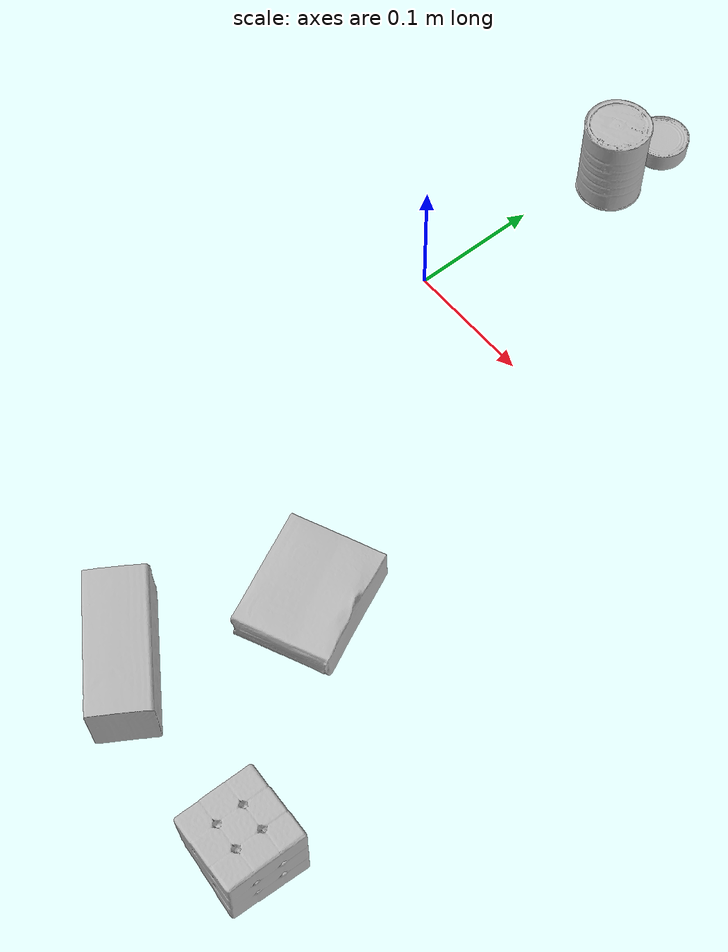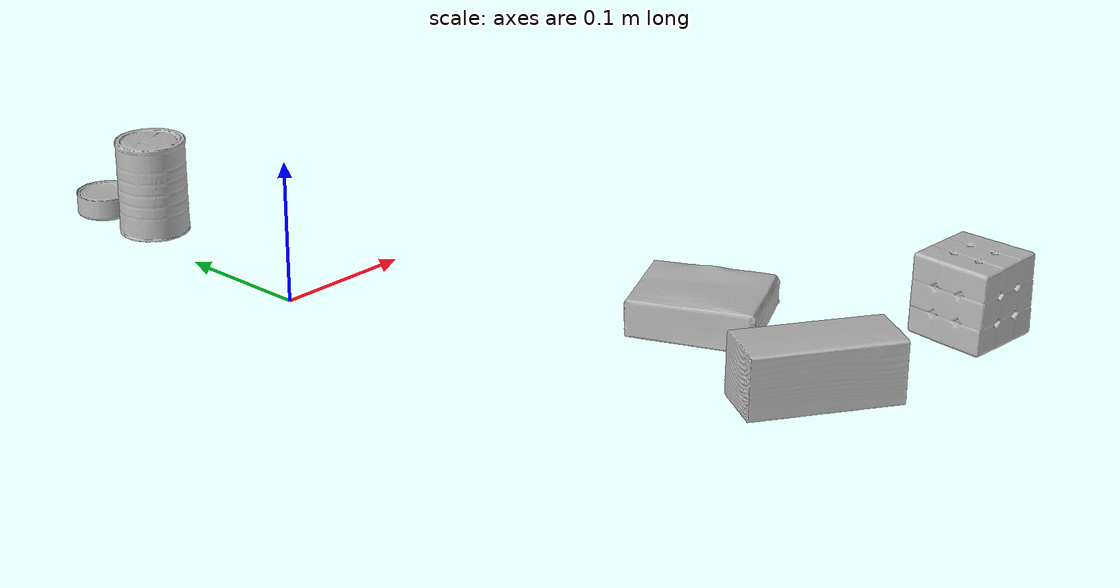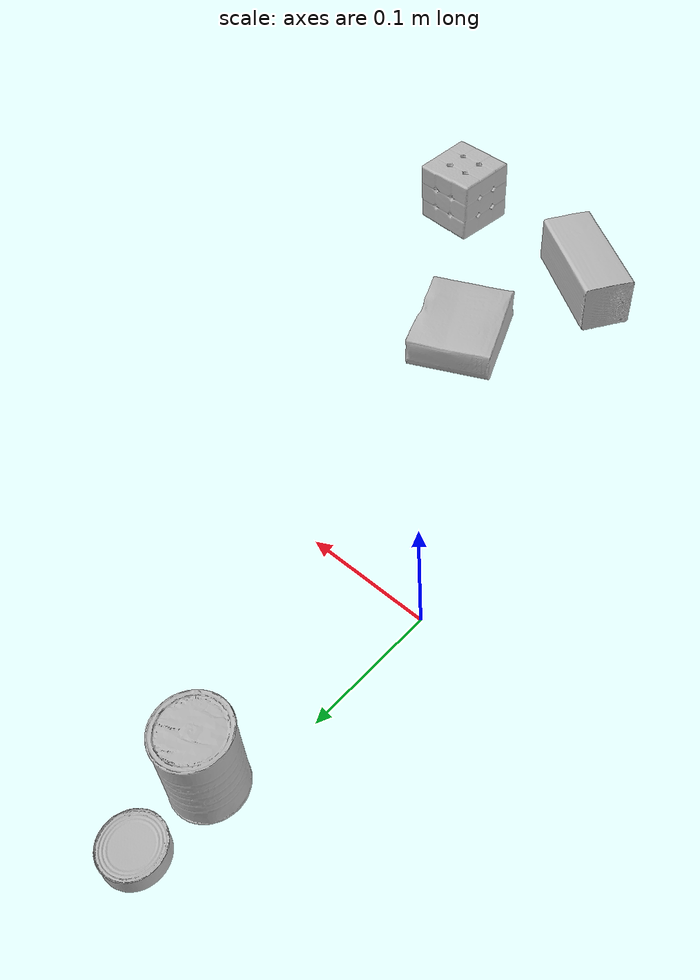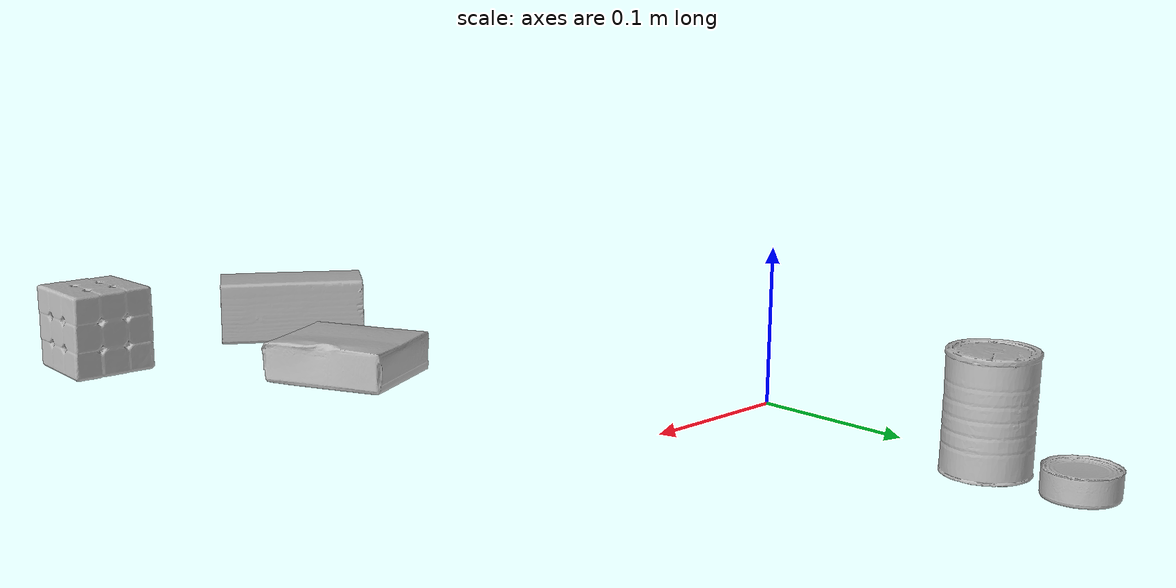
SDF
<sdf version="1.4">
  <world name="default">
    <light name="light1" type="point">
      <pose>0 0 1 0 0 0</pose>
      <diffuse>3 3 3 1</diffuse>
      <specular>3 3 3 1</specular>
    </light>
    <light name="light2" type="point">
      <pose>0 0.5 2 0 0 0</pose>
      <diffuse>1 1 1 1</diffuse>
      <specular>1 1 1 1</specular>
    </light>
    <light name="light3" type="point">
      <pose>0 0.5 2 0 0 0</pose>
      <diffuse>3 3 3 1</diffuse>
      <specular>3 3 3 1</specular>
    </light>
    <scene>
      <ambient>0.7 0.7 0.7</ambient>
    </scene>
    <model name="box1">
      <link name="link_box1">
        <collision name="default">
          <geometry>
            <mesh>
              <uri>model://rubiks_cube/collision_meshes/collision.obj</uri>
              <scale>1.0 1.0 1.0</scale>
            </mesh>
          </geometry>
          <surface>
            <friction>
              <ode>
                <mu>0.5</mu>
                <mu2>0.5</mu2>
              </ode>
            </friction>
          <contact>
        <ode>
            <max_vel>0</max_vel>
            <min_depth>0.0001</min_depth>
            <kp>1e8</kp>
        </ode>
    </contact></surface>
        </collision>
        <visual name="default">
          <geometry>
            <mesh>
              <uri>model://rubiks_cube/visual_meshes/visual.dae</uri>
              <scale>1.0 1.0 1.0</scale>
            </mesh>
          </geometry>
        </visual>
        <inertial>
          <mass>0.1675702929496765</mass>
          <pose>2.6721041649580002e-05 5.2569666877388954e-05 -7.264316082000732e-06 -0.054672410780645164 -0.09813946178663992 -0.034457105846518836</pose>
          <inertia>
            <ixx>9.259384e-05</ixx>
            <iyy>9.2162045e-05</iyy>
            <izz>9.336113e-05</izz>
            <ixy>0</ixy>
            <ixz>0</ixz>
            <iyz>0</iyz>
          </inertia>
        </inertial>
      </link>
      <pose>0.2680342197418213 -0.3672467768192291 0.028678959235548973 -4.20526200604251e-06 -1.765628299014674e-06 -0.03792312506970046</pose>
    </model>
    <model name="box2">
      <link name="link_box2">
        <collision name="default">
          <geometry>
            <mesh>
              <uri>model://wood_block/collision_meshes/collision.obj</uri>
              <scale>0.5 0.5 0.5</scale>
            </mesh>
          </geometry>
          <surface>
            <friction>
              <ode>
                <mu>0.5</mu>
                <mu2>0.5</mu2>
              </ode>
            </friction>
          <contact>
        <ode>
            <max_vel>0</max_vel>
            <min_depth>0.0001</min_depth>
            <kp>1e8</kp>
        </ode>
    </contact></surface>
        </collision>
        <visual name="default">
          <geometry>
            <mesh>
              <uri>model://wood_block/visual_meshes/visual.dae</uri>
              <scale>0.5 0.5 0.5</scale>
            </mesh>
          </geometry>
        </visual>
        <inertial>
          <mass>0.20594346523284912</mass>
          <pose>-2.9066577553749084e-06 -0.000285404734313488 0.00013204291462898254 -0.05220975528833662 -0.005192695571830849 -0.0068613788586691015</pose>
          <inertia>
            <ixx>6.8895875e-05</ixx>
            <iyy>0.0002176421</iyy>
            <izz>0.00021682802</izz>
            <ixy>0</ixy>
            <ixz>0</ixz>
            <iyz>0</iyz>
          </inertia>
        </inertial>
      </link>
      <pose>0.11667963117361069 -0.3526553809642792 0.022629275918006897 -0.005208358394317501 0.005718754187382959 2.56666381498562</pose>
    </model>
    <model name="box3">
      <link name="link_box3">
        <collision name="default">
          <geometry>
            <mesh>
              <uri>model://gelatin_box/collision_meshes/collision.obj</uri>
              <scale>1.0 1.0 1.0</scale>
            </mesh>
          </geometry>
          <surface>
            <friction>
              <ode>
                <mu>0.5</mu>
                <mu2>0.5</mu2>
              </ode>
            </friction>
          <contact>
        <ode>
            <max_vel>0</max_vel>
            <min_depth>0.0001</min_depth>
            <kp>1e8</kp>
        </ode>
    </contact></surface>
        </collision>
        <visual name="default">
          <geometry>
            <mesh>
              <uri>model://gelatin_box/visual_meshes/visual.dae</uri>
              <scale>1.0 1.0 1.0</scale>
            </mesh>
          </geometry>
        </visual>
        <inertial>
          <mass>0.27371785044670105</mass>
          <pose>0.0004319618456065655 0.00011156871914863586 -0.0003640321083366871 -0.0010503717367230932 -0.004755817294347581 0.01644056133308036</pose>
          <inertia>
            <ixx>0.00019322247</ixx>
            <iyy>0.00013801781</iyy>
            <izz>0.00029412765</izz>
            <ixy>0</ixy>
            <ixz>0</ixz>
            <iyz>0</iyz>
          </inertia>
        </inertial>
      </link>
      <pose>0.15752016007900238 -0.2312728464603424 0.015168316662311554 0.00559667472297876 -0.007303808804720369 0.42110360018142845</pose>
    </model>
    <model name="can1">
      <link name="link_can1">
        <collision name="default">
          <geometry>
            <mesh>
              <uri>model://master_chef_can/collision_meshes/collision.obj</uri>
              <scale>0.5 0.5 0.5</scale>
            </mesh>
          </geometry>
          <surface>
            <friction>
              <ode>
                <mu>0.5</mu>
                <mu2>0.5</mu2>
              </ode>
            </friction>
          <contact>
        <ode>
            <max_vel>0</max_vel>
            <min_depth>0.0001</min_depth>
            <kp>1e8</kp>
        </ode>
    </contact></surface>
        </collision>
        <visual name="default">
          <geometry>
            <mesh>
              <uri>model://master_chef_can/visual_meshes/visual.dae</uri>
              <scale>0.5 0.5 0.5</scale>
            </mesh>
          </geometry>
        </visual>
        <inertial>
          <mass>0.18439537286758423</mass>
          <pose>-4.6619643399026245e-05 1.3926847941547749e-07 -5.080040136817843e-05 -0.0017995053130472594 0.0006479450382529565 -0.6102509153361354</pose>
          <inertia>
            <ixx>0.00010822757</ixx>
            <iyy>0.00010743104</iyy>
            <izz>5.9804017e-05</izz>
            <ixy>0</ixy>
            <ixz>0</ixz>
            <iyz>0</iyz>
          </inertia>
        </inertial>
      </link>
      <pose>0.02054324373602867 0.16965678334236145 0.03530200570821762 -1.4036753520231076e-06 -1.017697773661591e-06 0.9588093112531797</pose>
    </model>
    <model name="can2">
      <link name="link_can2">
        <collision name="default">
          <geometry>
            <mesh>
              <uri>model://tuna_fish_can/collision_meshes/collision.obj</uri>
              <scale>0.5 0.5 0.5</scale>
            </mesh>
          </geometry>
          <surface>
            <friction>
              <ode>
                <mu>0.5</mu>
                <mu2>0.5</mu2>
              </ode>
            </friction>
          <contact>
        <ode>
            <max_vel>0</max_vel>
            <min_depth>0.0001</min_depth>
            <kp>1e8</kp>
        </ode>
    </contact></surface>
        </collision>
        <visual name="default">
          <geometry>
            <mesh>
              <uri>model://tuna_fish_can/visual_meshes/visual.dae</uri>
              <scale>0.5 0.5 0.5</scale>
            </mesh>
          </geometry>
        </visual>
        <inertial>
          <mass>0.02825223281979561</mass>
          <pose>-2.0362142095109448e-05 -7.256046956172213e-06 -0.0005269023240543902 -0.0017944745775900258 0.00017164550693472895 0.24055441971144348</pose>
          <inertia>
            <ixx>3.819744e-06</ixx>
            <iyy>3.803824e-06</iyy>
            <izz>6.536128e-06</izz>
            <ixy>0</ixy>
            <ixz>0</ixz>
            <iyz>0</iyz>
          </inertia>
        </inertial>
      </link>
      <pose>0.019581688567996025 0.2257949858903885 0.008520001545548439 4.310726895948731e-09 6.142255782625237e-10 0.744030060005235</pose>
    </model>
  <physics type="ode">
      <max_contacts>50</max_contacts>
      <ode>
        <solver>
          <type>quick</type>
          <iters>75</iters>
        </solver>
        <constraints>
          <contact_max_correcting_vel>0</contact_max_correcting_vel>
          <contact_surface_layer>0</contact_surface_layer>
        </constraints>
      </ode>
    </physics></world>
</sdf>
